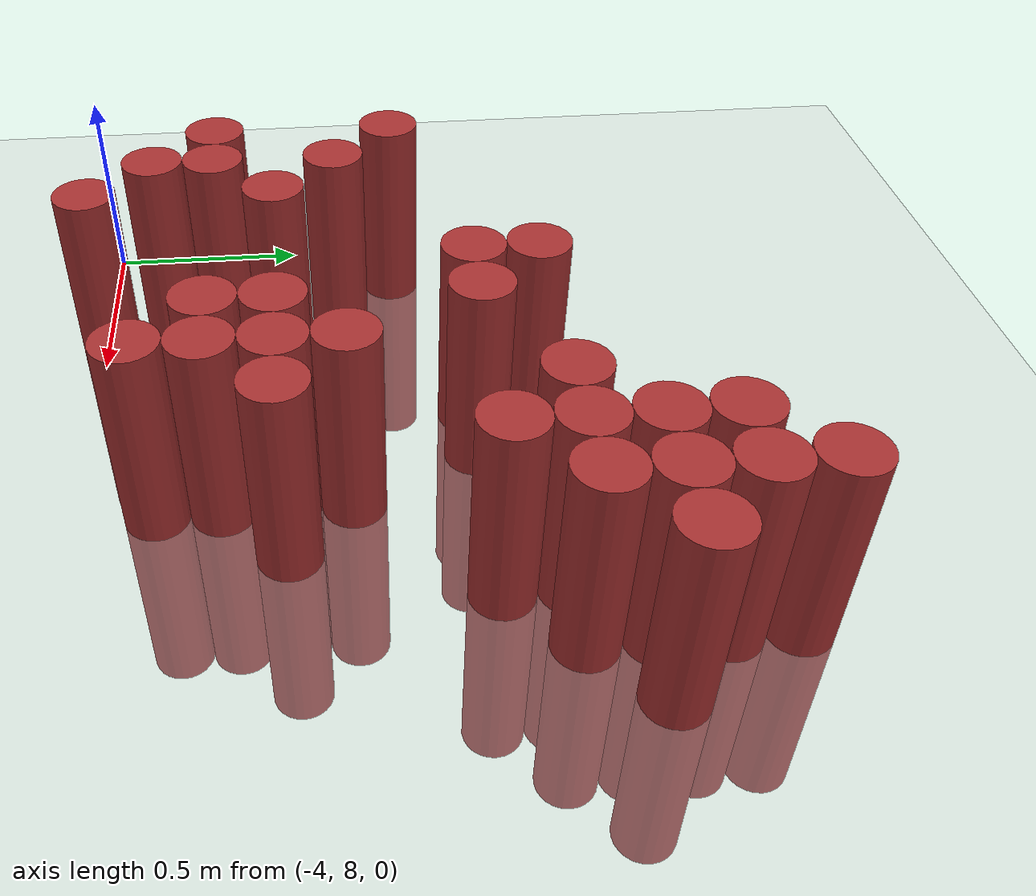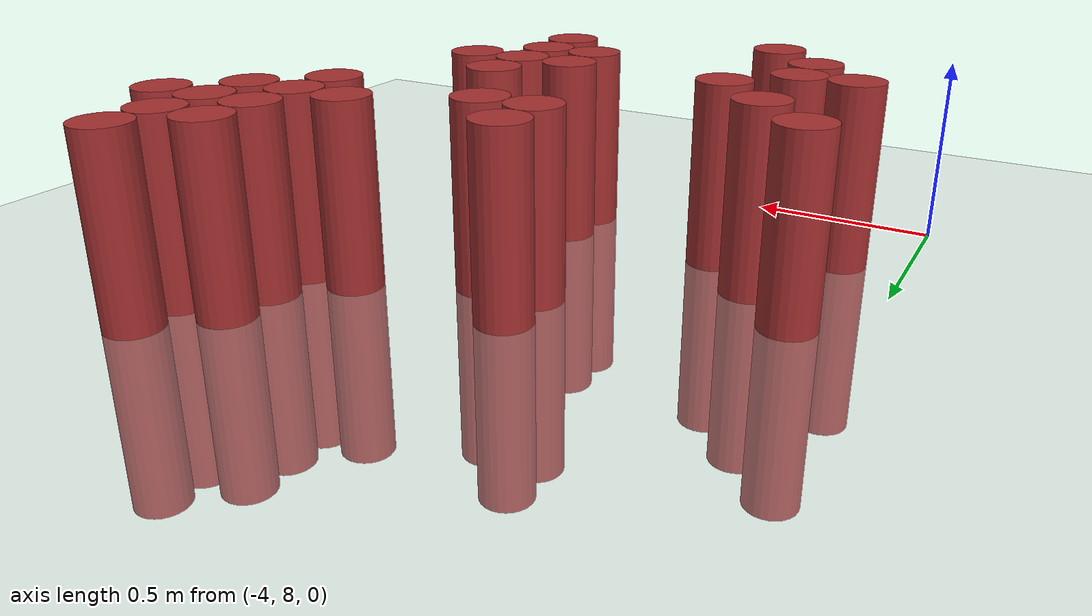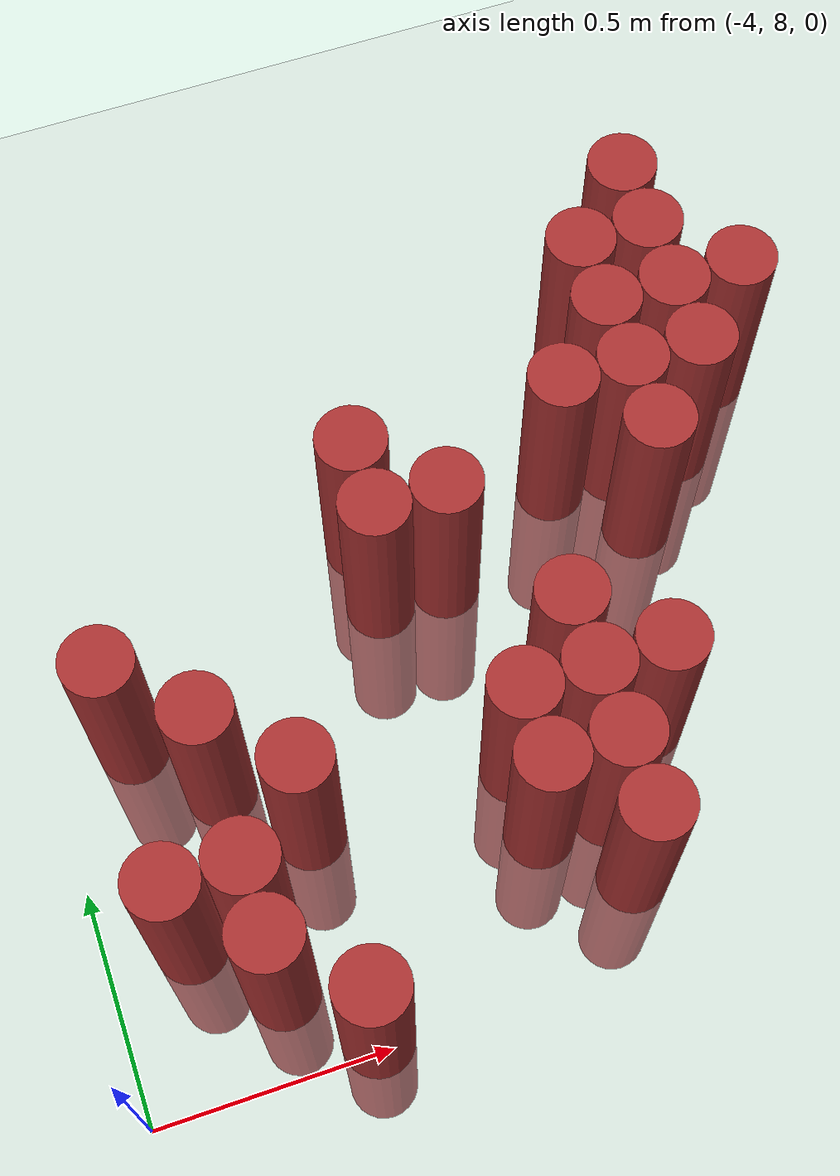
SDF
<sdf version="1.6">
 <world name="default">
  <model name="ground_plane">
   <static>1</static>
   <link name="link">
    <collision name="collision">
     <geometry><plane><normal>0 0 1</normal><size>100 100</size></plane></geometry>
     <surface><friction><ode><mu>100</mu><mu2>50</mu2></ode></friction></surface>
    </collision>
    <visual name="visual">
     <cast_shadows>0</cast_shadows>
     <geometry><plane><normal>0 0 1</normal><size>100 100</size></plane></geometry>
     <material>
      <script><uri>file://media/materials/scripts/gazebo.material</uri><name>Gazebo/Grey</name></script>
     </material>
    </visual>
   </link>
  </model>
  <model name="unit_cylinder_156">
   <static>1</static>
   <pose>-3.825000 8.325000 0.000000 0.000000 0.000000 0.000000</pose>
   <link name="link">
    <inertial>
     <mass>1</mass>
     <inertia><ixx>0.145833</ixx><ixy>0</ixy><ixz>0</ixz><iyy>0.145833</iyy><iyz>0</iyz><izz>0.125</izz></inertia>
    </inertial>
    <collision name="collision">
     <geometry><cylinder><radius>0.075000</radius><length>1</length></cylinder></geometry>
    </collision>
    <visual name="visual">
     <geometry><cylinder><radius>0.075000</radius><length>1</length></cylinder></geometry>
     <material>
      <ambient>0.648000 0.192000 0.192000 1</ambient>
      <diffuse>0.648000 0.192000 0.192000 1</diffuse>
     </material>
     <material>
      <script><name>Gazebo/Grey</name><uri>file://media/materials/scripts/gazebo.material</uri></script>
     </material>
    </visual>
   </link>
  </model>
  <model name="unit_cylinder_157">
   <static>1</static>
   <pose>-3.825000 8.775000 0.000000 0.000000 0.000000 0.000000</pose>
   <link name="link">
    <inertial>
     <mass>1</mass>
     <inertia><ixx>0.145833</ixx><ixy>0</ixy><ixz>0</ixz><iyy>0.145833</iyy><iyz>0</iyz><izz>0.125</izz></inertia>
    </inertial>
    <collision name="collision">
     <geometry><cylinder><radius>0.075000</radius><length>1</length></cylinder></geometry>
    </collision>
    <visual name="visual">
     <geometry><cylinder><radius>0.075000</radius><length>1</length></cylinder></geometry>
     <material>
      <ambient>0.648000 0.192000 0.192000 1</ambient>
      <diffuse>0.648000 0.192000 0.192000 1</diffuse>
     </material>
     <material>
      <script><name>Gazebo/Grey</name><uri>file://media/materials/scripts/gazebo.material</uri></script>
     </material>
    </visual>
   </link>
  </model>
  <model name="unit_cylinder_164">
   <static>1</static>
   <pose>-3.675000 8.175000 0.000000 0.000000 0.000000 0.000000</pose>
   <link name="link">
    <inertial>
     <mass>1</mass>
     <inertia><ixx>0.145833</ixx><ixy>0</ixy><ixz>0</ixz><iyy>0.145833</iyy><iyz>0</iyz><izz>0.125</izz></inertia>
    </inertial>
    <collision name="collision">
     <geometry><cylinder><radius>0.075000</radius><length>1</length></cylinder></geometry>
    </collision>
    <visual name="visual">
     <geometry><cylinder><radius>0.075000</radius><length>1</length></cylinder></geometry>
     <material>
      <ambient>0.648000 0.192000 0.192000 1</ambient>
      <diffuse>0.648000 0.192000 0.192000 1</diffuse>
     </material>
     <material>
      <script><name>Gazebo/Grey</name><uri>file://media/materials/scripts/gazebo.material</uri></script>
     </material>
    </visual>
   </link>
  </model>
  <model name="unit_cylinder_165">
   <static>1</static>
   <pose>-3.675000 8.325000 0.000000 0.000000 0.000000 0.000000</pose>
   <link name="link">
    <inertial>
     <mass>1</mass>
     <inertia><ixx>0.145833</ixx><ixy>0</ixy><ixz>0</ixz><iyy>0.145833</iyy><iyz>0</iyz><izz>0.125</izz></inertia>
    </inertial>
    <collision name="collision">
     <geometry><cylinder><radius>0.075000</radius><length>1</length></cylinder></geometry>
    </collision>
    <visual name="visual">
     <geometry><cylinder><radius>0.075000</radius><length>1</length></cylinder></geometry>
     <material>
      <ambient>0.648000 0.192000 0.192000 1</ambient>
      <diffuse>0.648000 0.192000 0.192000 1</diffuse>
     </material>
     <material>
      <script><name>Gazebo/Grey</name><uri>file://media/materials/scripts/gazebo.material</uri></script>
     </material>
    </visual>
   </link>
  </model>
  <model name="unit_cylinder_166">
   <static>1</static>
   <pose>-3.675000 8.625000 0.000000 0.000000 0.000000 0.000000</pose>
   <link name="link">
    <inertial>
     <mass>1</mass>
     <inertia><ixx>0.145833</ixx><ixy>0</ixy><ixz>0</ixz><iyy>0.145833</iyy><iyz>0</iyz><izz>0.125</izz></inertia>
    </inertial>
    <collision name="collision">
     <geometry><cylinder><radius>0.075000</radius><length>1</length></cylinder></geometry>
    </collision>
    <visual name="visual">
     <geometry><cylinder><radius>0.075000</radius><length>1</length></cylinder></geometry>
     <material>
      <ambient>0.648000 0.192000 0.192000 1</ambient>
      <diffuse>0.648000 0.192000 0.192000 1</diffuse>
     </material>
     <material>
      <script><name>Gazebo/Grey</name><uri>file://media/materials/scripts/gazebo.material</uri></script>
     </material>
    </visual>
   </link>
  </model>
  <model name="unit_cylinder_171">
   <static>1</static>
   <pose>-3.525000 8.025000 0.000000 0.000000 0.000000 0.000000</pose>
   <link name="link">
    <inertial>
     <mass>1</mass>
     <inertia><ixx>0.145833</ixx><ixy>0</ixy><ixz>0</ixz><iyy>0.145833</iyy><iyz>0</iyz><izz>0.125</izz></inertia>
    </inertial>
    <collision name="collision">
     <geometry><cylinder><radius>0.075000</radius><length>1</length></cylinder></geometry>
    </collision>
    <visual name="visual">
     <geometry><cylinder><radius>0.075000</radius><length>1</length></cylinder></geometry>
     <material>
      <ambient>0.648000 0.192000 0.192000 1</ambient>
      <diffuse>0.648000 0.192000 0.192000 1</diffuse>
     </material>
     <material>
      <script><name>Gazebo/Grey</name><uri>file://media/materials/scripts/gazebo.material</uri></script>
     </material>
    </visual>
   </link>
  </model>
  <model name="unit_cylinder_172">
   <static>1</static>
   <pose>-3.525000 8.475000 0.000000 0.000000 0.000000 0.000000</pose>
   <link name="link">
    <inertial>
     <mass>1</mass>
     <inertia><ixx>0.145833</ixx><ixy>0</ixy><ixz>0</ixz><iyy>0.145833</iyy><iyz>0</iyz><izz>0.125</izz></inertia>
    </inertial>
    <collision name="collision">
     <geometry><cylinder><radius>0.075000</radius><length>1</length></cylinder></geometry>
    </collision>
    <visual name="visual">
     <geometry><cylinder><radius>0.075000</radius><length>1</length></cylinder></geometry>
     <material>
      <ambient>0.648000 0.192000 0.192000 1</ambient>
      <diffuse>0.648000 0.192000 0.192000 1</diffuse>
     </material>
     <material>
      <script><name>Gazebo/Grey</name><uri>file://media/materials/scripts/gazebo.material</uri></script>
     </material>
    </visual>
   </link>
  </model>
  <model name="unit_cylinder_174">
   <static>1</static>
   <pose>-3.225000 8.925000 0.000000 0.000000 0.000000 0.000000</pose>
   <link name="link">
    <inertial>
     <mass>1</mass>
     <inertia><ixx>0.145833</ixx><ixy>0</ixy><ixz>0</ixz><iyy>0.145833</iyy><iyz>0</iyz><izz>0.125</izz></inertia>
    </inertial>
    <collision name="collision">
     <geometry><cylinder><radius>0.075000</radius><length>1</length></cylinder></geometry>
    </collision>
    <visual name="visual">
     <geometry><cylinder><radius>0.075000</radius><length>1</length></cylinder></geometry>
     <material>
      <ambient>0.648000 0.192000 0.192000 1</ambient>
      <diffuse>0.648000 0.192000 0.192000 1</diffuse>
     </material>
     <material>
      <script><name>Gazebo/Grey</name><uri>file://media/materials/scripts/gazebo.material</uri></script>
     </material>
    </visual>
   </link>
  </model>
  <model name="unit_cylinder_175">
   <static>1</static>
   <pose>-3.225000 9.075000 0.000000 0.000000 0.000000 0.000000</pose>
   <link name="link">
    <inertial>
     <mass>1</mass>
     <inertia><ixx>0.145833</ixx><ixy>0</ixy><ixz>0</ixz><iyy>0.145833</iyy><iyz>0</iyz><izz>0.125</izz></inertia>
    </inertial>
    <collision name="collision">
     <geometry><cylinder><radius>0.075000</radius><length>1</length></cylinder></geometry>
    </collision>
    <visual name="visual">
     <geometry><cylinder><radius>0.075000</radius><length>1</length></cylinder></geometry>
     <material>
      <ambient>0.648000 0.192000 0.192000 1</ambient>
      <diffuse>0.648000 0.192000 0.192000 1</diffuse>
     </material>
     <material>
      <script><name>Gazebo/Grey</name><uri>file://media/materials/scripts/gazebo.material</uri></script>
     </material>
    </visual>
   </link>
  </model>
  <model name="unit_cylinder_177">
   <static>1</static>
   <pose>-3.075000 8.325000 0.000000 0.000000 0.000000 0.000000</pose>
   <link name="link">
    <inertial>
     <mass>1</mass>
     <inertia><ixx>0.145833</ixx><ixy>0</ixy><ixz>0</ixz><iyy>0.145833</iyy><iyz>0</iyz><izz>0.125</izz></inertia>
    </inertial>
    <collision name="collision">
     <geometry><cylinder><radius>0.075000</radius><length>1</length></cylinder></geometry>
    </collision>
    <visual name="visual">
     <geometry><cylinder><radius>0.075000</radius><length>1</length></cylinder></geometry>
     <material>
      <ambient>0.648000 0.192000 0.192000 1</ambient>
      <diffuse>0.648000 0.192000 0.192000 1</diffuse>
     </material>
     <material>
      <script><name>Gazebo/Grey</name><uri>file://media/materials/scripts/gazebo.material</uri></script>
     </material>
    </visual>
   </link>
  </model>
  <model name="unit_cylinder_178">
   <static>1</static>
   <pose>-3.075000 8.475000 0.000000 0.000000 0.000000 0.000000</pose>
   <link name="link">
    <inertial>
     <mass>1</mass>
     <inertia><ixx>0.145833</ixx><ixy>0</ixy><ixz>0</ixz><iyy>0.145833</iyy><iyz>0</iyz><izz>0.125</izz></inertia>
    </inertial>
    <collision name="collision">
     <geometry><cylinder><radius>0.075000</radius><length>1</length></cylinder></geometry>
    </collision>
    <visual name="visual">
     <geometry><cylinder><radius>0.075000</radius><length>1</length></cylinder></geometry>
     <material>
      <ambient>0.648000 0.192000 0.192000 1</ambient>
      <diffuse>0.648000 0.192000 0.192000 1</diffuse>
     </material>
     <material>
      <script><name>Gazebo/Grey</name><uri>file://media/materials/scripts/gazebo.material</uri></script>
     </material>
    </visual>
   </link>
  </model>
  <model name="unit_cylinder_179">
   <static>1</static>
   <pose>-3.075000 8.925000 0.000000 0.000000 0.000000 0.000000</pose>
   <link name="link">
    <inertial>
     <mass>1</mass>
     <inertia><ixx>0.145833</ixx><ixy>0</ixy><ixz>0</ixz><iyy>0.145833</iyy><iyz>0</iyz><izz>0.125</izz></inertia>
    </inertial>
    <collision name="collision">
     <geometry><cylinder><radius>0.075000</radius><length>1</length></cylinder></geometry>
    </collision>
    <visual name="visual">
     <geometry><cylinder><radius>0.075000</radius><length>1</length></cylinder></geometry>
     <material>
      <ambient>0.648000 0.192000 0.192000 1</ambient>
      <diffuse>0.648000 0.192000 0.192000 1</diffuse>
     </material>
     <material>
      <script><name>Gazebo/Grey</name><uri>file://media/materials/scripts/gazebo.material</uri></script>
     </material>
    </visual>
   </link>
  </model>
  <model name="unit_cylinder_182">
   <static>1</static>
   <pose>-2.925000 8.175000 0.000000 0.000000 0.000000 0.000000</pose>
   <link name="link">
    <inertial>
     <mass>1</mass>
     <inertia><ixx>0.145833</ixx><ixy>0</ixy><ixz>0</ixz><iyy>0.145833</iyy><iyz>0</iyz><izz>0.125</izz></inertia>
    </inertial>
    <collision name="collision">
     <geometry><cylinder><radius>0.075000</radius><length>1</length></cylinder></geometry>
    </collision>
    <visual name="visual">
     <geometry><cylinder><radius>0.075000</radius><length>1</length></cylinder></geometry>
     <material>
      <ambient>0.648000 0.192000 0.192000 1</ambient>
      <diffuse>0.648000 0.192000 0.192000 1</diffuse>
     </material>
     <material>
      <script><name>Gazebo/Grey</name><uri>file://media/materials/scripts/gazebo.material</uri></script>
     </material>
    </visual>
   </link>
  </model>
  <model name="unit_cylinder_183">
   <static>1</static>
   <pose>-2.925000 8.325000 0.000000 0.000000 0.000000 0.000000</pose>
   <link name="link">
    <inertial>
     <mass>1</mass>
     <inertia><ixx>0.145833</ixx><ixy>0</ixy><ixz>0</ixz><iyy>0.145833</iyy><iyz>0</iyz><izz>0.125</izz></inertia>
    </inertial>
    <collision name="collision">
     <geometry><cylinder><radius>0.075000</radius><length>1</length></cylinder></geometry>
    </collision>
    <visual name="visual">
     <geometry><cylinder><radius>0.075000</radius><length>1</length></cylinder></geometry>
     <material>
      <ambient>0.648000 0.192000 0.192000 1</ambient>
      <diffuse>0.648000 0.192000 0.192000 1</diffuse>
     </material>
     <material>
      <script><name>Gazebo/Grey</name><uri>file://media/materials/scripts/gazebo.material</uri></script>
     </material>
    </visual>
   </link>
  </model>
  <model name="unit_cylinder_184">
   <static>1</static>
   <pose>-2.925000 8.475000 0.000000 0.000000 0.000000 0.000000</pose>
   <link name="link">
    <inertial>
     <mass>1</mass>
     <inertia><ixx>0.145833</ixx><ixy>0</ixy><ixz>0</ixz><iyy>0.145833</iyy><iyz>0</iyz><izz>0.125</izz></inertia>
    </inertial>
    <collision name="collision">
     <geometry><cylinder><radius>0.075000</radius><length>1</length></cylinder></geometry>
    </collision>
    <visual name="visual">
     <geometry><cylinder><radius>0.075000</radius><length>1</length></cylinder></geometry>
     <material>
      <ambient>0.648000 0.192000 0.192000 1</ambient>
      <diffuse>0.648000 0.192000 0.192000 1</diffuse>
     </material>
     <material>
      <script><name>Gazebo/Grey</name><uri>file://media/materials/scripts/gazebo.material</uri></script>
     </material>
    </visual>
   </link>
  </model>
  <model name="unit_cylinder_185">
   <static>1</static>
   <pose>-2.925000 8.625000 0.000000 0.000000 0.000000 0.000000</pose>
   <link name="link">
    <inertial>
     <mass>1</mass>
     <inertia><ixx>0.145833</ixx><ixy>0</ixy><ixz>0</ixz><iyy>0.145833</iyy><iyz>0</iyz><izz>0.125</izz></inertia>
    </inertial>
    <collision name="collision">
     <geometry><cylinder><radius>0.075000</radius><length>1</length></cylinder></geometry>
    </collision>
    <visual name="visual">
     <geometry><cylinder><radius>0.075000</radius><length>1</length></cylinder></geometry>
     <material>
      <ambient>0.648000 0.192000 0.192000 1</ambient>
      <diffuse>0.648000 0.192000 0.192000 1</diffuse>
     </material>
     <material>
      <script><name>Gazebo/Grey</name><uri>file://media/materials/scripts/gazebo.material</uri></script>
     </material>
    </visual>
   </link>
  </model>
  <model name="unit_cylinder_189">
   <static>1</static>
   <pose>-2.775000 8.475000 0.000000 0.000000 0.000000 0.000000</pose>
   <link name="link">
    <inertial>
     <mass>1</mass>
     <inertia><ixx>0.145833</ixx><ixy>0</ixy><ixz>0</ixz><iyy>0.145833</iyy><iyz>0</iyz><izz>0.125</izz></inertia>
    </inertial>
    <collision name="collision">
     <geometry><cylinder><radius>0.075000</radius><length>1</length></cylinder></geometry>
    </collision>
    <visual name="visual">
     <geometry><cylinder><radius>0.075000</radius><length>1</length></cylinder></geometry>
     <material>
      <ambient>0.648000 0.192000 0.192000 1</ambient>
      <diffuse>0.648000 0.192000 0.192000 1</diffuse>
     </material>
     <material>
      <script><name>Gazebo/Grey</name><uri>file://media/materials/scripts/gazebo.material</uri></script>
     </material>
    </visual>
   </link>
  </model>
  <model name="unit_cylinder_190">
   <static>1</static>
   <pose>-2.775000 9.075000 0.000000 0.000000 0.000000 0.000000</pose>
   <link name="link">
    <inertial>
     <mass>1</mass>
     <inertia><ixx>0.145833</ixx><ixy>0</ixy><ixz>0</ixz><iyy>0.145833</iyy><iyz>0</iyz><izz>0.125</izz></inertia>
    </inertial>
    <collision name="collision">
     <geometry><cylinder><radius>0.075000</radius><length>1</length></cylinder></geometry>
    </collision>
    <visual name="visual">
     <geometry><cylinder><radius>0.075000</radius><length>1</length></cylinder></geometry>
     <material>
      <ambient>0.648000 0.192000 0.192000 1</ambient>
      <diffuse>0.648000 0.192000 0.192000 1</diffuse>
     </material>
     <material>
      <script><name>Gazebo/Grey</name><uri>file://media/materials/scripts/gazebo.material</uri></script>
     </material>
    </visual>
   </link>
  </model>
  <model name="unit_cylinder_192">
   <static>1</static>
   <pose>-2.625000 8.925000 0.000000 0.000000 0.000000 0.000000</pose>
   <link name="link">
    <inertial>
     <mass>1</mass>
     <inertia><ixx>0.145833</ixx><ixy>0</ixy><ixz>0</ixz><iyy>0.145833</iyy><iyz>0</iyz><izz>0.125</izz></inertia>
    </inertial>
    <collision name="collision">
     <geometry><cylinder><radius>0.075000</radius><length>1</length></cylinder></geometry>
    </collision>
    <visual name="visual">
     <geometry><cylinder><radius>0.075000</radius><length>1</length></cylinder></geometry>
     <material>
      <ambient>0.648000 0.192000 0.192000 1</ambient>
      <diffuse>0.648000 0.192000 0.192000 1</diffuse>
     </material>
     <material>
      <script><name>Gazebo/Grey</name><uri>file://media/materials/scripts/gazebo.material</uri></script>
     </material>
    </visual>
   </link>
  </model>
  <model name="unit_cylinder_193">
   <static>1</static>
   <pose>-2.625000 9.075000 0.000000 0.000000 0.000000 0.000000</pose>
   <link name="link">
    <inertial>
     <mass>1</mass>
     <inertia><ixx>0.145833</ixx><ixy>0</ixy><ixz>0</ixz><iyy>0.145833</iyy><iyz>0</iyz><izz>0.125</izz></inertia>
    </inertial>
    <collision name="collision">
     <geometry><cylinder><radius>0.075000</radius><length>1</length></cylinder></geometry>
    </collision>
    <visual name="visual">
     <geometry><cylinder><radius>0.075000</radius><length>1</length></cylinder></geometry>
     <material>
      <ambient>0.648000 0.192000 0.192000 1</ambient>
      <diffuse>0.648000 0.192000 0.192000 1</diffuse>
     </material>
     <material>
      <script><name>Gazebo/Grey</name><uri>file://media/materials/scripts/gazebo.material</uri></script>
     </material>
    </visual>
   </link>
  </model>
  <model name="unit_cylinder_194">
   <static>1</static>
   <pose>-2.625000 9.225000 0.000000 0.000000 0.000000 0.000000</pose>
   <link name="link">
    <inertial>
     <mass>1</mass>
     <inertia><ixx>0.145833</ixx><ixy>0</ixy><ixz>0</ixz><iyy>0.145833</iyy><iyz>0</iyz><izz>0.125</izz></inertia>
    </inertial>
    <collision name="collision">
     <geometry><cylinder><radius>0.075000</radius><length>1</length></cylinder></geometry>
    </collision>
    <visual name="visual">
     <geometry><cylinder><radius>0.075000</radius><length>1</length></cylinder></geometry>
     <material>
      <ambient>0.648000 0.192000 0.192000 1</ambient>
      <diffuse>0.648000 0.192000 0.192000 1</diffuse>
     </material>
     <material>
      <script><name>Gazebo/Grey</name><uri>file://media/materials/scripts/gazebo.material</uri></script>
     </material>
    </visual>
   </link>
  </model>
  <model name="unit_cylinder_195">
   <static>1</static>
   <pose>-2.625000 9.375000 0.000000 0.000000 0.000000 0.000000</pose>
   <link name="link">
    <inertial>
     <mass>1</mass>
     <inertia><ixx>0.145833</ixx><ixy>0</ixy><ixz>0</ixz><iyy>0.145833</iyy><iyz>0</iyz><izz>0.125</izz></inertia>
    </inertial>
    <collision name="collision">
     <geometry><cylinder><radius>0.075000</radius><length>1</length></cylinder></geometry>
    </collision>
    <visual name="visual">
     <geometry><cylinder><radius>0.075000</radius><length>1</length></cylinder></geometry>
     <material>
      <ambient>0.648000 0.192000 0.192000 1</ambient>
      <diffuse>0.648000 0.192000 0.192000 1</diffuse>
     </material>
     <material>
      <script><name>Gazebo/Grey</name><uri>file://media/materials/scripts/gazebo.material</uri></script>
     </material>
    </visual>
   </link>
  </model>
  <model name="unit_cylinder_198">
   <static>1</static>
   <pose>-2.475000 9.075000 0.000000 0.000000 0.000000 0.000000</pose>
   <link name="link">
    <inertial>
     <mass>1</mass>
     <inertia><ixx>0.145833</ixx><ixy>0</ixy><ixz>0</ixz><iyy>0.145833</iyy><iyz>0</iyz><izz>0.125</izz></inertia>
    </inertial>
    <collision name="collision">
     <geometry><cylinder><radius>0.075000</radius><length>1</length></cylinder></geometry>
    </collision>
    <visual name="visual">
     <geometry><cylinder><radius>0.075000</radius><length>1</length></cylinder></geometry>
     <material>
      <ambient>0.648000 0.192000 0.192000 1</ambient>
      <diffuse>0.648000 0.192000 0.192000 1</diffuse>
     </material>
     <material>
      <script><name>Gazebo/Grey</name><uri>file://media/materials/scripts/gazebo.material</uri></script>
     </material>
    </visual>
   </link>
  </model>
  <model name="unit_cylinder_199">
   <static>1</static>
   <pose>-2.475000 9.225000 0.000000 0.000000 0.000000 0.000000</pose>
   <link name="link">
    <inertial>
     <mass>1</mass>
     <inertia><ixx>0.145833</ixx><ixy>0</ixy><ixz>0</ixz><iyy>0.145833</iyy><iyz>0</iyz><izz>0.125</izz></inertia>
    </inertial>
    <collision name="collision">
     <geometry><cylinder><radius>0.075000</radius><length>1</length></cylinder></geometry>
    </collision>
    <visual name="visual">
     <geometry><cylinder><radius>0.075000</radius><length>1</length></cylinder></geometry>
     <material>
      <ambient>0.648000 0.192000 0.192000 1</ambient>
      <diffuse>0.648000 0.192000 0.192000 1</diffuse>
     </material>
     <material>
      <script><name>Gazebo/Grey</name><uri>file://media/materials/scripts/gazebo.material</uri></script>
     </material>
    </visual>
   </link>
  </model>
  <model name="unit_cylinder_200">
   <static>1</static>
   <pose>-2.475000 9.375000 0.000000 0.000000 0.000000 0.000000</pose>
   <link name="link">
    <inertial>
     <mass>1</mass>
     <inertia><ixx>0.145833</ixx><ixy>0</ixy><ixz>0</ixz><iyy>0.145833</iyy><iyz>0</iyz><izz>0.125</izz></inertia>
    </inertial>
    <collision name="collision">
     <geometry><cylinder><radius>0.075000</radius><length>1</length></cylinder></geometry>
    </collision>
    <visual name="visual">
     <geometry><cylinder><radius>0.075000</radius><length>1</length></cylinder></geometry>
     <material>
      <ambient>0.648000 0.192000 0.192000 1</ambient>
      <diffuse>0.648000 0.192000 0.192000 1</diffuse>
     </material>
     <material>
      <script><name>Gazebo/Grey</name><uri>file://media/materials/scripts/gazebo.material</uri></script>
     </material>
    </visual>
   </link>
  </model>
  <model name="unit_cylinder_201">
   <static>1</static>
   <pose>-2.475000 9.525000 0.000000 0.000000 0.000000 0.000000</pose>
   <link name="link">
    <inertial>
     <mass>1</mass>
     <inertia><ixx>0.145833</ixx><ixy>0</ixy><ixz>0</ixz><iyy>0.145833</iyy><iyz>0</iyz><izz>0.125</izz></inertia>
    </inertial>
    <collision name="collision">
     <geometry><cylinder><radius>0.075000</radius><length>1</length></cylinder></geometry>
    </collision>
    <visual name="visual">
     <geometry><cylinder><radius>0.075000</radius><length>1</length></cylinder></geometry>
     <material>
      <ambient>0.648000 0.192000 0.192000 1</ambient>
      <diffuse>0.648000 0.192000 0.192000 1</diffuse>
     </material>
     <material>
      <script><name>Gazebo/Grey</name><uri>file://media/materials/scripts/gazebo.material</uri></script>
     </material>
    </visual>
   </link>
  </model>
  <model name="unit_cylinder_205">
   <static>1</static>
   <pose>-2.325000 9.225000 0.000000 0.000000 0.000000 0.000000</pose>
   <link name="link">
    <inertial>
     <mass>1</mass>
     <inertia><ixx>0.145833</ixx><ixy>0</ixy><ixz>0</ixz><iyy>0.145833</iyy><iyz>0</iyz><izz>0.125</izz></inertia>
    </inertial>
    <collision name="collision">
     <geometry><cylinder><radius>0.075000</radius><length>1</length></cylinder></geometry>
    </collision>
    <visual name="visual">
     <geometry><cylinder><radius>0.075000</radius><length>1</length></cylinder></geometry>
     <material>
      <ambient>0.648000 0.192000 0.192000 1</ambient>
      <diffuse>0.648000 0.192000 0.192000 1</diffuse>
     </material>
     <material>
      <script><name>Gazebo/Grey</name><uri>file://media/materials/scripts/gazebo.material</uri></script>
     </material>
    </visual>
   </link>
  </model>
 </world>
</sdf>
